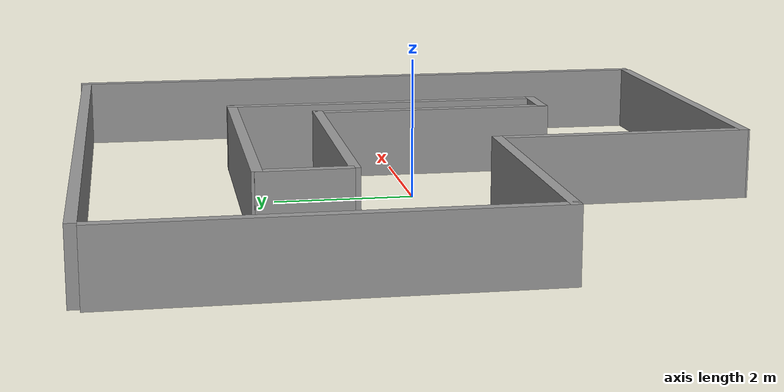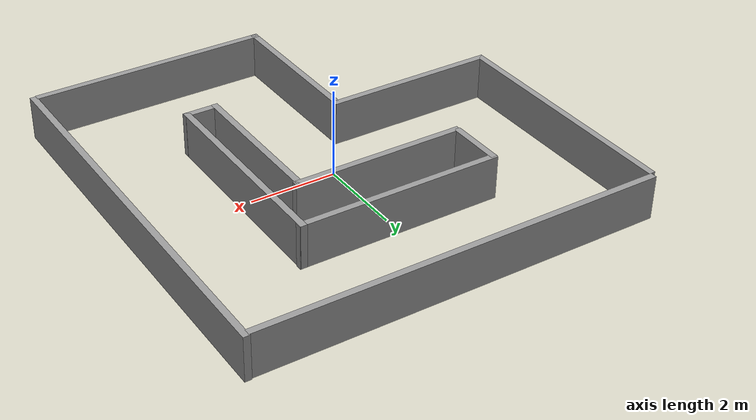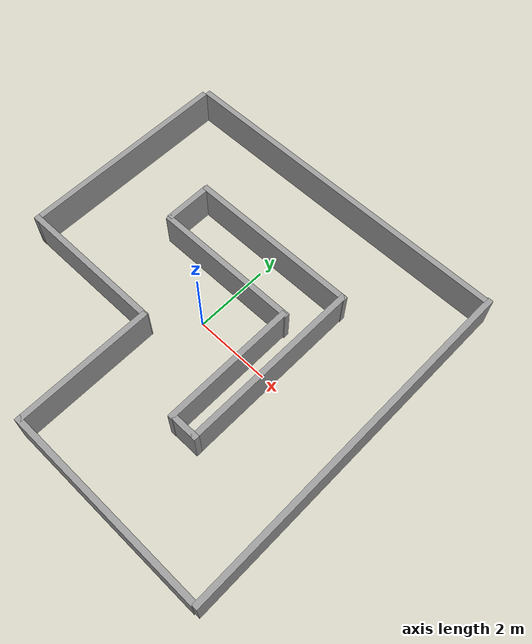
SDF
<?xml version='1.0'?>
<sdf version='1.6'>
  <model name='Circuit_ql_3'>
    <link name='Wall_0'>
      <pose frame=''>-4.6 1.725 0 0 0 -1.5708</pose>
      <self_collide>0</self_collide>
      <kinematic>0</kinematic>
      <visual name='Wall_0_Visual'>
        <pose frame=''>0 0 0.5 0 -0 0</pose>
        <geometry>
          <box>
            <size>5.75 0.15 1</size>
          </box>
        </geometry>
        <material>
          <script>
            <uri>file://media/materials/scripts/gazebo.material</uri>
            <name>Gazebo/Grey</name>
          </script>
          <ambient>1 1 1 1</ambient>
          <diffuse>0.7 0.7 0.7 1</diffuse>
          <specular>0.01 0.01 0.01 1</specular>
          <emissive>0 0 0 1</emissive>
        </material>
        <cast_shadows>1</cast_shadows>
        <transparency>0</transparency>
      </visual>
      <collision name='Wall_0_Collision'>
        <laser_retro>0</laser_retro>
        <max_contacts>10</max_contacts>
        <pose frame=''>0 0 0.5 0 -0 0</pose>
        <geometry>
          <box>
            <size>5.75 0.15 1</size>
          </box>
        </geometry>
        <surface>
          <friction>
            <ode>
              <mu>1</mu>
              <mu2>1</mu2>
              <fdir1>0 0 0</fdir1>
              <slip1>0</slip1>
              <slip2>0</slip2>
            </ode>
            <torsional>
              <coefficient>1</coefficient>
              <patch_radius>0</patch_radius>
              <surface_radius>0</surface_radius>
              <use_patch_radius>1</use_patch_radius>
              <ode>
                <slip>0</slip>
              </ode>
            </torsional>
          </friction>
          <bounce>
            <restitution_coefficient>0</restitution_coefficient>
            <threshold>1e+06</threshold>
          </bounce>
          <contact>
            <collide_without_contact>0</collide_without_contact>
            <collide_without_contact_bitmask>1</collide_without_contact_bitmask>
            <collide_bitmask>1</collide_bitmask>
            <ode>
              <soft_cfm>0</soft_cfm>
              <soft_erp>0.2</soft_erp>
              <kp>1e+13</kp>
              <kd>1</kd>
              <max_vel>0.01</max_vel>
              <min_depth>0</min_depth>
            </ode>
            <bullet>
              <split_impulse>1</split_impulse>
              <split_impulse_penetration_threshold>-0.01</split_impulse_penetration_threshold>
              <soft_cfm>0</soft_cfm>
              <soft_erp>0.2</soft_erp>
              <kp>1e+13</kp>
              <kd>1</kd>
            </bullet>
          </contact>
        </surface>
      </collision>
    </link>
    <link name='Wall_1'>
      <pose frame=''>-2.675 -1.075 0 0 -0 0</pose>
      <self_collide>0</self_collide>
      <kinematic>0</kinematic>
      <visual name='Wall_1_Visual'>
        <pose frame=''>0 0 0.5 0 -0 0</pose>
        <geometry>
          <box>
            <size>4 0.15 1</size>
          </box>
        </geometry>
        <material>
          <script>
            <uri>file://media/materials/scripts/gazebo.material</uri>
            <name>Gazebo/Grey</name>
          </script>
          <ambient>1 1 1 1</ambient>
          <diffuse>0.7 0.7 0.7 1</diffuse>
          <specular>0.01 0.01 0.01 1</specular>
          <emissive>0 0 0 1</emissive>
        </material>
        <cast_shadows>1</cast_shadows>
        <transparency>0</transparency>
      </visual>
      <collision name='Wall_1_Collision'>
        <laser_retro>0</laser_retro>
        <max_contacts>10</max_contacts>
        <pose frame=''>0 0 0.5 0 -0 0</pose>
        <geometry>
          <box>
            <size>4 0.15 1</size>
          </box>
        </geometry>
        <surface>
          <friction>
            <ode>
              <mu>1</mu>
              <mu2>1</mu2>
              <fdir1>0 0 0</fdir1>
              <slip1>0</slip1>
              <slip2>0</slip2>
            </ode>
            <torsional>
              <coefficient>1</coefficient>
              <patch_radius>0</patch_radius>
              <surface_radius>0</surface_radius>
              <use_patch_radius>1</use_patch_radius>
              <ode>
                <slip>0</slip>
              </ode>
            </torsional>
          </friction>
          <bounce>
            <restitution_coefficient>0</restitution_coefficient>
            <threshold>1e+06</threshold>
          </bounce>
          <contact>
            <collide_without_contact>0</collide_without_contact>
            <collide_without_contact_bitmask>1</collide_without_contact_bitmask>
            <collide_bitmask>1</collide_bitmask>
            <ode>
              <soft_cfm>0</soft_cfm>
              <soft_erp>0.2</soft_erp>
              <kp>1e+13</kp>
              <kd>1</kd>
              <max_vel>0.01</max_vel>
              <min_depth>0</min_depth>
            </ode>
            <bullet>
              <split_impulse>1</split_impulse>
              <split_impulse_penetration_threshold>-0.01</split_impulse_penetration_threshold>
              <soft_cfm>0</soft_cfm>
              <soft_erp>0.2</soft_erp>
              <kp>1e+13</kp>
              <kd>1</kd>
            </bullet>
          </contact>
        </surface>
      </collision>
    </link>
    <link name='Wall_11'>
      <pose frame=''>-2.29861 1.81753 0 0 0 -1.5708</pose>
      <self_collide>0</self_collide>
      <kinematic>0</kinematic>
      <inertial>
        <inertia>
          <ixx>nan</ixx>
          <ixy>0</ixy>
          <ixz>0</ixz>
          <iyy>nan</iyy>
          <iyz>0</iyz>
          <izz>nan</izz>
        </inertia>
        <mass>0</mass>
        <pose frame=''>0 0 0 0 -0 0</pose>
      </inertial>
      <visual name='Wall_11_Visual'>
        <pose frame=''>0 0 0.5 0 -0 0</pose>
        <geometry>
          <box>
            <size>1.28898 0.15 1</size>
          </box>
        </geometry>
        <material>
          <script>
            <uri>file://media/materials/scripts/gazebo.material</uri>
            <name>Gazebo/Grey</name>
          </script>
          <ambient>1 1 1 1</ambient>
          <diffuse>0.7 0.7 0.7 1</diffuse>
          <specular>0.01 0.01 0.01 1</specular>
          <emissive>0 0 0 1</emissive>
        </material>
        <cast_shadows>1</cast_shadows>
        <transparency>0</transparency>
      </visual>
      <collision name='Wall_11_Collision'>
        <laser_retro>0</laser_retro>
        <max_contacts>10</max_contacts>
        <pose frame=''>0 0 0.5 0 -0 0</pose>
        <geometry>
          <box>
            <size>1.28898 0.15 1</size>
          </box>
        </geometry>
        <surface>
          <friction>
            <ode>
              <mu>1</mu>
              <mu2>1</mu2>
              <fdir1>0 0 0</fdir1>
              <slip1>0</slip1>
              <slip2>0</slip2>
            </ode>
            <torsional>
              <coefficient>1</coefficient>
              <patch_radius>0</patch_radius>
              <surface_radius>0</surface_radius>
              <use_patch_radius>1</use_patch_radius>
              <ode>
                <slip>0</slip>
              </ode>
            </torsional>
          </friction>
          <bounce>
            <restitution_coefficient>0</restitution_coefficient>
            <threshold>1e+06</threshold>
          </bounce>
          <contact>
            <collide_without_contact>0</collide_without_contact>
            <collide_without_contact_bitmask>1</collide_without_contact_bitmask>
            <collide_bitmask>1</collide_bitmask>
            <ode>
              <soft_cfm>0</soft_cfm>
              <soft_erp>0.2</soft_erp>
              <kp>1e+13</kp>
              <kd>1</kd>
              <max_vel>0.01</max_vel>
              <min_depth>0</min_depth>
            </ode>
            <bullet>
              <split_impulse>1</split_impulse>
              <split_impulse_penetration_threshold>-0.01</split_impulse_penetration_threshold>
              <soft_cfm>0</soft_cfm>
              <soft_erp>0.2</soft_erp>
              <kp>1e+13</kp>
              <kd>1</kd>
            </bullet>
          </contact>
        </surface>
      </collision>
    </link>
    <link name='Wall_12'>
      <pose frame=''>-0.348583 1.17159 0 0 -0 0</pose>
      <self_collide>0</self_collide>
      <kinematic>0</kinematic>
      <visual name='Wall_12_Visual'>
        <pose frame=''>0 0 0.5 0 -0 0</pose>
        <geometry>
          <box>
            <size>4 0.15 1</size>
          </box>
        </geometry>
        <material>
          <script>
            <uri>file://media/materials/scripts/gazebo.material</uri>
            <name>Gazebo/Grey</name>
          </script>
          <ambient>1 1 1 1</ambient>
          <diffuse>0.7 0.7 0.7 1</diffuse>
          <specular>0.01 0.01 0.01 1</specular>
          <emissive>0 0 0 1</emissive>
        </material>
        <cast_shadows>1</cast_shadows>
        <transparency>0</transparency>
      </visual>
      <collision name='Wall_12_Collision'>
        <laser_retro>0</laser_retro>
        <max_contacts>10</max_contacts>
        <pose frame=''>0 0 0.5 0 -0 0</pose>
        <geometry>
          <box>
            <size>4 0.15 1</size>
          </box>
        </geometry>
        <surface>
          <friction>
            <ode>
              <mu>1</mu>
              <mu2>1</mu2>
              <fdir1>0 0 0</fdir1>
              <slip1>0</slip1>
              <slip2>0</slip2>
            </ode>
            <torsional>
              <coefficient>1</coefficient>
              <patch_radius>0</patch_radius>
              <surface_radius>0</surface_radius>
              <use_patch_radius>1</use_patch_radius>
              <ode>
                <slip>0</slip>
              </ode>
            </torsional>
          </friction>
          <bounce>
            <restitution_coefficient>0</restitution_coefficient>
            <threshold>1e+06</threshold>
          </bounce>
          <contact>
            <collide_without_contact>0</collide_without_contact>
            <collide_without_contact_bitmask>1</collide_without_contact_bitmask>
            <collide_bitmask>1</collide_bitmask>
            <ode>
              <soft_cfm>0</soft_cfm>
              <soft_erp>0.2</soft_erp>
              <kp>1e+13</kp>
              <kd>1</kd>
              <max_vel>0.01</max_vel>
              <min_depth>0</min_depth>
            </ode>
            <bullet>
              <split_impulse>1</split_impulse>
              <split_impulse_penetration_threshold>-0.01</split_impulse_penetration_threshold>
              <soft_cfm>0</soft_cfm>
              <soft_erp>0.2</soft_erp>
              <kp>1e+13</kp>
              <kd>1</kd>
            </bullet>
          </contact>
        </surface>
      </collision>
    </link>
    <link name='Wall_13'>
      <pose frame=''>1.5425 -0.591157 0 0 0 -1.5708</pose>
      <self_collide>0</self_collide>
      <kinematic>0</kinematic>
      <inertial>
        <inertia>
          <ixx>nan</ixx>
          <ixy>0</ixy>
          <ixz>0</ixz>
          <iyy>nan</iyy>
          <iyz>0</iyz>
          <izz>nan</izz>
        </inertia>
        <mass>0</mass>
        <pose frame=''>0 0 0 0 -0 0</pose>
      </inertial>
      <visual name='Wall_13_Visual'>
        <pose frame=''>0 0 0.5 0 -0 0</pose>
        <geometry>
          <box>
            <size>3.60771 0.15 1</size>
          </box>
        </geometry>
        <material>
          <script>
            <uri>file://media/materials/scripts/gazebo.material</uri>
            <name>Gazebo/Grey</name>
          </script>
          <ambient>1 1 1 1</ambient>
          <diffuse>0.7 0.7 0.7 1</diffuse>
          <specular>0.01 0.01 0.01 1</specular>
          <emissive>0 0 0 1</emissive>
        </material>
        <cast_shadows>1</cast_shadows>
        <transparency>0</transparency>
      </visual>
      <collision name='Wall_13_Collision'>
        <laser_retro>0</laser_retro>
        <max_contacts>10</max_contacts>
        <pose frame=''>0 0 0.5 0 -0 0</pose>
        <geometry>
          <box>
            <size>3.60771 0.15 1</size>
          </box>
        </geometry>
        <surface>
          <friction>
            <ode>
              <mu>1</mu>
              <mu2>1</mu2>
              <fdir1>0 0 0</fdir1>
              <slip1>0</slip1>
              <slip2>0</slip2>
            </ode>
            <torsional>
              <coefficient>1</coefficient>
              <patch_radius>0</patch_radius>
              <surface_radius>0</surface_radius>
              <use_patch_radius>1</use_patch_radius>
              <ode>
                <slip>0</slip>
              </ode>
            </torsional>
          </friction>
          <bounce>
            <restitution_coefficient>0</restitution_coefficient>
            <threshold>1e+06</threshold>
          </bounce>
          <contact>
            <collide_without_contact>0</collide_without_contact>
            <collide_without_contact_bitmask>1</collide_without_contact_bitmask>
            <collide_bitmask>1</collide_bitmask>
            <ode>
              <soft_cfm>0</soft_cfm>
              <soft_erp>0.2</soft_erp>
              <kp>1e+13</kp>
              <kd>1</kd>
              <max_vel>0.01</max_vel>
              <min_depth>0</min_depth>
            </ode>
            <bullet>
              <split_impulse>1</split_impulse>
              <split_impulse_penetration_threshold>-0.01</split_impulse_penetration_threshold>
              <soft_cfm>0</soft_cfm>
              <soft_erp>0.2</soft_erp>
              <kp>1e+13</kp>
              <kd>1</kd>
            </bullet>
          </contact>
        </surface>
      </collision>
    </link>
    <link name='Wall_14'>
      <pose frame=''>1.9 -2.31321 0 0 -0 0</pose>
      <self_collide>0</self_collide>
      <kinematic>0</kinematic>
      <inertial>
        <inertia>
          <ixx>nan</ixx>
          <ixy>0</ixy>
          <ixz>0</ixz>
          <iyy>nan</iyy>
          <iyz>0</iyz>
          <izz>nan</izz>
        </inertia>
        <mass>0</mass>
        <pose frame=''>0 0 0 0 -0 0</pose>
      </inertial>
      <visual name='Wall_14_Visual'>
        <pose frame=''>0 0 0.5 0 -0 0</pose>
        <geometry>
          <box>
            <size>0.795783 0.15 1</size>
          </box>
        </geometry>
        <material>
          <script>
            <uri>file://media/materials/scripts/gazebo.material</uri>
            <name>Gazebo/Grey</name>
          </script>
          <ambient>1 1 1 1</ambient>
          <diffuse>0.7 0.7 0.7 1</diffuse>
          <specular>0.01 0.01 0.01 1</specular>
          <emissive>0 0 0 1</emissive>
        </material>
        <cast_shadows>1</cast_shadows>
        <transparency>0</transparency>
      </visual>
      <collision name='Wall_14_Collision'>
        <laser_retro>0</laser_retro>
        <max_contacts>10</max_contacts>
        <pose frame=''>0 0 0.5 0 -0 0</pose>
        <geometry>
          <box>
            <size>0.795783 0.15 1</size>
          </box>
        </geometry>
        <surface>
          <friction>
            <ode>
              <mu>1</mu>
              <mu2>1</mu2>
              <fdir1>0 0 0</fdir1>
              <slip1>0</slip1>
              <slip2>0</slip2>
            </ode>
            <torsional>
              <coefficient>1</coefficient>
              <patch_radius>0</patch_radius>
              <surface_radius>0</surface_radius>
              <use_patch_radius>1</use_patch_radius>
              <ode>
                <slip>0</slip>
              </ode>
            </torsional>
          </friction>
          <bounce>
            <restitution_coefficient>0</restitution_coefficient>
            <threshold>1e+06</threshold>
          </bounce>
          <contact>
            <collide_without_contact>0</collide_without_contact>
            <collide_without_contact_bitmask>1</collide_without_contact_bitmask>
            <collide_bitmask>1</collide_bitmask>
            <ode>
              <soft_cfm>0</soft_cfm>
              <soft_erp>0.2</soft_erp>
              <kp>1e+13</kp>
              <kd>1</kd>
              <max_vel>0.01</max_vel>
              <min_depth>0</min_depth>
            </ode>
            <bullet>
              <split_impulse>1</split_impulse>
              <split_impulse_penetration_threshold>-0.01</split_impulse_penetration_threshold>
              <soft_cfm>0</soft_cfm>
              <soft_erp>0.2</soft_erp>
              <kp>1e+13</kp>
              <kd>1</kd>
            </bullet>
          </contact>
        </surface>
      </collision>
    </link>
    <link name='Wall_15'>
      <pose frame=''>2.22561 0.063707 0 0 -0 1.56823</pose>
      <self_collide>0</self_collide>
      <kinematic>0</kinematic>
      <inertial>
        <inertia>
          <ixx>nan</ixx>
          <ixy>0</ixy>
          <ixz>0</ixz>
          <iyy>nan</iyy>
          <iyz>0</iyz>
          <izz>nan</izz>
        </inertia>
        <mass>0</mass>
        <pose frame=''>0 0 0 0 -0 0</pose>
      </inertial>
      <visual name='Wall_15_Visual'>
        <pose frame=''>0 0 0.5 0 -0 0</pose>
        <geometry>
          <box>
            <size>4.8823 0.15 1</size>
          </box>
        </geometry>
        <material>
          <script>
            <uri>file://media/materials/scripts/gazebo.material</uri>
            <name>Gazebo/Grey</name>
          </script>
          <ambient>1 1 1 1</ambient>
          <diffuse>0.7 0.7 0.7 1</diffuse>
          <specular>0.01 0.01 0.01 1</specular>
          <emissive>0 0 0 1</emissive>
        </material>
        <cast_shadows>1</cast_shadows>
        <transparency>0</transparency>
      </visual>
      <collision name='Wall_15_Collision'>
        <laser_retro>0</laser_retro>
        <max_contacts>10</max_contacts>
        <pose frame=''>0 0 0.5 0 -0 0</pose>
        <geometry>
          <box>
            <size>4.8823 0.15 1</size>
          </box>
        </geometry>
        <surface>
          <friction>
            <ode>
              <mu>1</mu>
              <mu2>1</mu2>
              <fdir1>0 0 0</fdir1>
              <slip1>0</slip1>
              <slip2>0</slip2>
            </ode>
            <torsional>
              <coefficient>1</coefficient>
              <patch_radius>0</patch_radius>
              <surface_radius>0</surface_radius>
              <use_patch_radius>1</use_patch_radius>
              <ode>
                <slip>0</slip>
              </ode>
            </torsional>
          </friction>
          <bounce>
            <restitution_coefficient>0</restitution_coefficient>
            <threshold>1e+06</threshold>
          </bounce>
          <contact>
            <collide_without_contact>0</collide_without_contact>
            <collide_without_contact_bitmask>1</collide_without_contact_bitmask>
            <collide_bitmask>1</collide_bitmask>
            <ode>
              <soft_cfm>0</soft_cfm>
              <soft_erp>0.2</soft_erp>
              <kp>1e+13</kp>
              <kd>1</kd>
              <max_vel>0.01</max_vel>
              <min_depth>0</min_depth>
            </ode>
            <bullet>
              <split_impulse>1</split_impulse>
              <split_impulse_penetration_threshold>-0.01</split_impulse_penetration_threshold>
              <soft_cfm>0</soft_cfm>
              <soft_erp>0.2</soft_erp>
              <kp>1e+13</kp>
              <kd>1</kd>
            </bullet>
          </contact>
        </surface>
      </collision>
    </link>
    <link name='Wall_16'>
      <pose frame=''>-0.020001 2.42713 0 0 -0 3.14159</pose>
      <self_collide>0</self_collide>
      <kinematic>0</kinematic>
      <inertial>
        <inertia>
          <ixx>nan</ixx>
          <ixy>0</ixy>
          <ixz>0</ixz>
          <iyy>nan</iyy>
          <iyz>0</iyz>
          <izz>nan</izz>
        </inertia>
        <mass>0</mass>
        <pose frame=''>0 0 0 0 -0 0</pose>
      </inertial>
      <visual name='Wall_16_Visual'>
        <pose frame=''>0 0 0.5 0 -0 0</pose>
        <geometry>
          <box>
            <size>4.67944 0.15 1</size>
          </box>
        </geometry>
        <material>
          <script>
            <uri>file://media/materials/scripts/gazebo.material</uri>
            <name>Gazebo/Grey</name>
          </script>
          <ambient>1 1 1 1</ambient>
          <diffuse>0.7 0.7 0.7 1</diffuse>
          <specular>0.01 0.01 0.01 1</specular>
          <emissive>0 0 0 1</emissive>
        </material>
        <cast_shadows>1</cast_shadows>
        <transparency>0</transparency>
      </visual>
      <collision name='Wall_16_Collision'>
        <laser_retro>0</laser_retro>
        <max_contacts>10</max_contacts>
        <pose frame=''>0 0 0.5 0 -0 0</pose>
        <geometry>
          <box>
            <size>4.67944 0.15 1</size>
          </box>
        </geometry>
        <surface>
          <friction>
            <ode>
              <mu>1</mu>
              <mu2>1</mu2>
              <fdir1>0 0 0</fdir1>
              <slip1>0</slip1>
              <slip2>0</slip2>
            </ode>
            <torsional>
              <coefficient>1</coefficient>
              <patch_radius>0</patch_radius>
              <surface_radius>0</surface_radius>
              <use_patch_radius>1</use_patch_radius>
              <ode>
                <slip>0</slip>
              </ode>
            </torsional>
          </friction>
          <bounce>
            <restitution_coefficient>0</restitution_coefficient>
            <threshold>1e+06</threshold>
          </bounce>
          <contact>
            <collide_without_contact>0</collide_without_contact>
            <collide_without_contact_bitmask>1</collide_without_contact_bitmask>
            <collide_bitmask>1</collide_bitmask>
            <ode>
              <soft_cfm>0</soft_cfm>
              <soft_erp>0.2</soft_erp>
              <kp>1e+13</kp>
              <kd>1</kd>
              <max_vel>0.01</max_vel>
              <min_depth>0</min_depth>
            </ode>
            <bullet>
              <split_impulse>1</split_impulse>
              <split_impulse_penetration_threshold>-0.01</split_impulse_penetration_threshold>
              <soft_cfm>0</soft_cfm>
              <soft_erp>0.2</soft_erp>
              <kp>1e+13</kp>
              <kd>1</kd>
            </bullet>
          </contact>
        </surface>
      </collision>
    </link>
    <link name='Wall_2'>
      <pose frame=''>-0.75 -2.875 0 0 0 -1.5708</pose>
      <self_collide>0</self_collide>
      <kinematic>0</kinematic>
      <visual name='Wall_2_Visual'>
        <pose frame=''>0 0 0.5 0 -0 0</pose>
        <geometry>
          <box>
            <size>3.7 0.15 1</size>
          </box>
        </geometry>
        <material>
          <script>
            <uri>file://media/materials/scripts/gazebo.material</uri>
            <name>Gazebo/Grey</name>
          </script>
          <ambient>1 1 1 1</ambient>
          <diffuse>0.7 0.7 0.7 1</diffuse>
          <specular>0.01 0.01 0.01 1</specular>
          <emissive>0 0 0 1</emissive>
        </material>
        <cast_shadows>1</cast_shadows>
        <transparency>0</transparency>
      </visual>
      <collision name='Wall_2_Collision'>
        <laser_retro>0</laser_retro>
        <max_contacts>10</max_contacts>
        <pose frame=''>0 0 0.5 0 -0 0</pose>
        <geometry>
          <box>
            <size>3.7 0.15 1</size>
          </box>
        </geometry>
        <surface>
          <friction>
            <ode>
              <mu>1</mu>
              <mu2>1</mu2>
              <fdir1>0 0 0</fdir1>
              <slip1>0</slip1>
              <slip2>0</slip2>
            </ode>
            <torsional>
              <coefficient>1</coefficient>
              <patch_radius>0</patch_radius>
              <surface_radius>0</surface_radius>
              <use_patch_radius>1</use_patch_radius>
              <ode>
                <slip>0</slip>
              </ode>
            </torsional>
          </friction>
          <bounce>
            <restitution_coefficient>0</restitution_coefficient>
            <threshold>1e+06</threshold>
          </bounce>
          <contact>
            <collide_without_contact>0</collide_without_contact>
            <collide_without_contact_bitmask>1</collide_without_contact_bitmask>
            <collide_bitmask>1</collide_bitmask>
            <ode>
              <soft_cfm>0</soft_cfm>
              <soft_erp>0.2</soft_erp>
              <kp>1e+13</kp>
              <kd>1</kd>
              <max_vel>0.01</max_vel>
              <min_depth>0</min_depth>
            </ode>
            <bullet>
              <split_impulse>1</split_impulse>
              <split_impulse_penetration_threshold>-0.01</split_impulse_penetration_threshold>
              <soft_cfm>0</soft_cfm>
              <soft_erp>0.2</soft_erp>
              <kp>1e+13</kp>
              <kd>1</kd>
            </bullet>
          </contact>
        </surface>
      </collision>
    </link>
    <link name='Wall_3'>
      <pose frame=''>1.925 -4.675 0 0 -0 0</pose>
      <self_collide>0</self_collide>
      <kinematic>0</kinematic>
      <visual name='Wall_3_Visual'>
        <pose frame=''>0 0 0.5 0 -0 0</pose>
        <geometry>
          <box>
            <size>5.5 0.15 1</size>
          </box>
        </geometry>
        <material>
          <script>
            <uri>file://media/materials/scripts/gazebo.material</uri>
            <name>Gazebo/Grey</name>
          </script>
          <ambient>1 1 1 1</ambient>
          <diffuse>0.7 0.7 0.7 1</diffuse>
          <specular>0.01 0.01 0.01 1</specular>
          <emissive>0 0 0 1</emissive>
        </material>
        <cast_shadows>1</cast_shadows>
        <transparency>0</transparency>
      </visual>
      <collision name='Wall_3_Collision'>
        <laser_retro>0</laser_retro>
        <max_contacts>10</max_contacts>
        <pose frame=''>0 0 0.5 0 -0 0</pose>
        <geometry>
          <box>
            <size>5.5 0.15 1</size>
          </box>
        </geometry>
        <surface>
          <friction>
            <ode>
              <mu>1</mu>
              <mu2>1</mu2>
              <fdir1>0 0 0</fdir1>
              <slip1>0</slip1>
              <slip2>0</slip2>
            </ode>
            <torsional>
              <coefficient>1</coefficient>
              <patch_radius>0</patch_radius>
              <surface_radius>0</surface_radius>
              <use_patch_radius>1</use_patch_radius>
              <ode>
                <slip>0</slip>
              </ode>
            </torsional>
          </friction>
          <bounce>
            <restitution_coefficient>0</restitution_coefficient>
            <threshold>1e+06</threshold>
          </bounce>
          <contact>
            <collide_without_contact>0</collide_without_contact>
            <collide_without_contact_bitmask>1</collide_without_contact_bitmask>
            <collide_bitmask>1</collide_bitmask>
            <ode>
              <soft_cfm>0</soft_cfm>
              <soft_erp>0.2</soft_erp>
              <kp>1e+13</kp>
              <kd>1</kd>
              <max_vel>0.01</max_vel>
              <min_depth>0</min_depth>
            </ode>
            <bullet>
              <split_impulse>1</split_impulse>
              <split_impulse_penetration_threshold>-0.01</split_impulse_penetration_threshold>
              <soft_cfm>0</soft_cfm>
              <soft_erp>0.2</soft_erp>
              <kp>1e+13</kp>
              <kd>1</kd>
            </bullet>
          </contact>
        </surface>
      </collision>
    </link>
    <link name='Wall_7'>
      <pose frame=''>4.73005 0.024061 0 0 -0 1.5708</pose>
      <self_collide>0</self_collide>
      <kinematic>0</kinematic>
      <visual name='Wall_7_Visual'>
        <pose frame=''>0 0 0.5 0 -0 0</pose>
        <geometry>
          <box>
            <size>9.5 0.15 1</size>
          </box>
        </geometry>
        <material>
          <script>
            <uri>file://media/materials/scripts/gazebo.material</uri>
            <name>Gazebo/Grey</name>
          </script>
          <ambient>1 1 1 1</ambient>
          <diffuse>0.7 0.7 0.7 1</diffuse>
          <specular>0.01 0.01 0.01 1</specular>
          <emissive>0 0 0 1</emissive>
        </material>
        <cast_shadows>1</cast_shadows>
        <transparency>0</transparency>
      </visual>
      <collision name='Wall_7_Collision'>
        <laser_retro>0</laser_retro>
        <max_contacts>10</max_contacts>
        <pose frame=''>0 0 0.5 0 -0 0</pose>
        <geometry>
          <box>
            <size>9.5 0.15 1</size>
          </box>
        </geometry>
        <surface>
          <friction>
            <ode>
              <mu>1</mu>
              <mu2>1</mu2>
              <fdir1>0 0 0</fdir1>
              <slip1>0</slip1>
              <slip2>0</slip2>
            </ode>
            <torsional>
              <coefficient>1</coefficient>
              <patch_radius>0</patch_radius>
              <surface_radius>0</surface_radius>
              <use_patch_radius>1</use_patch_radius>
              <ode>
                <slip>0</slip>
              </ode>
            </torsional>
          </friction>
          <bounce>
            <restitution_coefficient>0</restitution_coefficient>
            <threshold>1e+06</threshold>
          </bounce>
          <contact>
            <collide_without_contact>0</collide_without_contact>
            <collide_without_contact_bitmask>1</collide_without_contact_bitmask>
            <collide_bitmask>1</collide_bitmask>
            <ode>
              <soft_cfm>0</soft_cfm>
              <soft_erp>0.2</soft_erp>
              <kp>1e+13</kp>
              <kd>1</kd>
              <max_vel>0.01</max_vel>
              <min_depth>0</min_depth>
            </ode>
            <bullet>
              <split_impulse>1</split_impulse>
              <split_impulse_penetration_threshold>-0.01</split_impulse_penetration_threshold>
              <soft_cfm>0</soft_cfm>
              <soft_erp>0.2</soft_erp>
              <kp>1e+13</kp>
              <kd>1</kd>
            </bullet>
          </contact>
        </surface>
      </collision>
    </link>
    <link name='Wall_9'>
      <pose frame=''>0.05 4.675 0 0 -0 3.14159</pose>
      <self_collide>0</self_collide>
      <kinematic>0</kinematic>
      <visual name='Wall_9_Visual'>
        <pose frame=''>0 0 0.5 0 -0 0</pose>
        <geometry>
          <box>
            <size>9.25 0.15 1</size>
          </box>
        </geometry>
        <material>
          <script>
            <uri>file://media/materials/scripts/gazebo.material</uri>
            <name>Gazebo/Grey</name>
          </script>
          <ambient>1 1 1 1</ambient>
          <diffuse>0.7 0.7 0.7 1</diffuse>
          <specular>0.01 0.01 0.01 1</specular>
          <emissive>0 0 0 1</emissive>
        </material>
        <cast_shadows>1</cast_shadows>
        <transparency>0</transparency>
      </visual>
      <collision name='Wall_9_Collision'>
        <laser_retro>0</laser_retro>
        <max_contacts>10</max_contacts>
        <pose frame=''>0 0 0.5 0 -0 0</pose>
        <geometry>
          <box>
            <size>9.25 0.15 1</size>
          </box>
        </geometry>
        <surface>
          <friction>
            <ode>
              <mu>1</mu>
              <mu2>1</mu2>
              <fdir1>0 0 0</fdir1>
              <slip1>0</slip1>
              <slip2>0</slip2>
            </ode>
            <torsional>
              <coefficient>1</coefficient>
              <patch_radius>0</patch_radius>
              <surface_radius>0</surface_radius>
              <use_patch_radius>1</use_patch_radius>
              <ode>
                <slip>0</slip>
              </ode>
            </torsional>
          </friction>
          <bounce>
            <restitution_coefficient>0</restitution_coefficient>
            <threshold>1e+06</threshold>
          </bounce>
          <contact>
            <collide_without_contact>0</collide_without_contact>
            <collide_without_contact_bitmask>1</collide_without_contact_bitmask>
            <collide_bitmask>1</collide_bitmask>
            <ode>
              <soft_cfm>0</soft_cfm>
              <soft_erp>0.2</soft_erp>
              <kp>1e+13</kp>
              <kd>1</kd>
              <max_vel>0.01</max_vel>
              <min_depth>0</min_depth>
            </ode>
            <bullet>
              <split_impulse>1</split_impulse>
              <split_impulse_penetration_threshold>-0.01</split_impulse_penetration_threshold>
              <soft_cfm>0</soft_cfm>
              <soft_erp>0.2</soft_erp>
              <kp>1e+13</kp>
              <kd>1</kd>
            </bullet>
          </contact>
        </surface>
      </collision>
    </link>
    <static>1</static>
    <allow_auto_disable>1</allow_auto_disable>
  </model>
</sdf>
